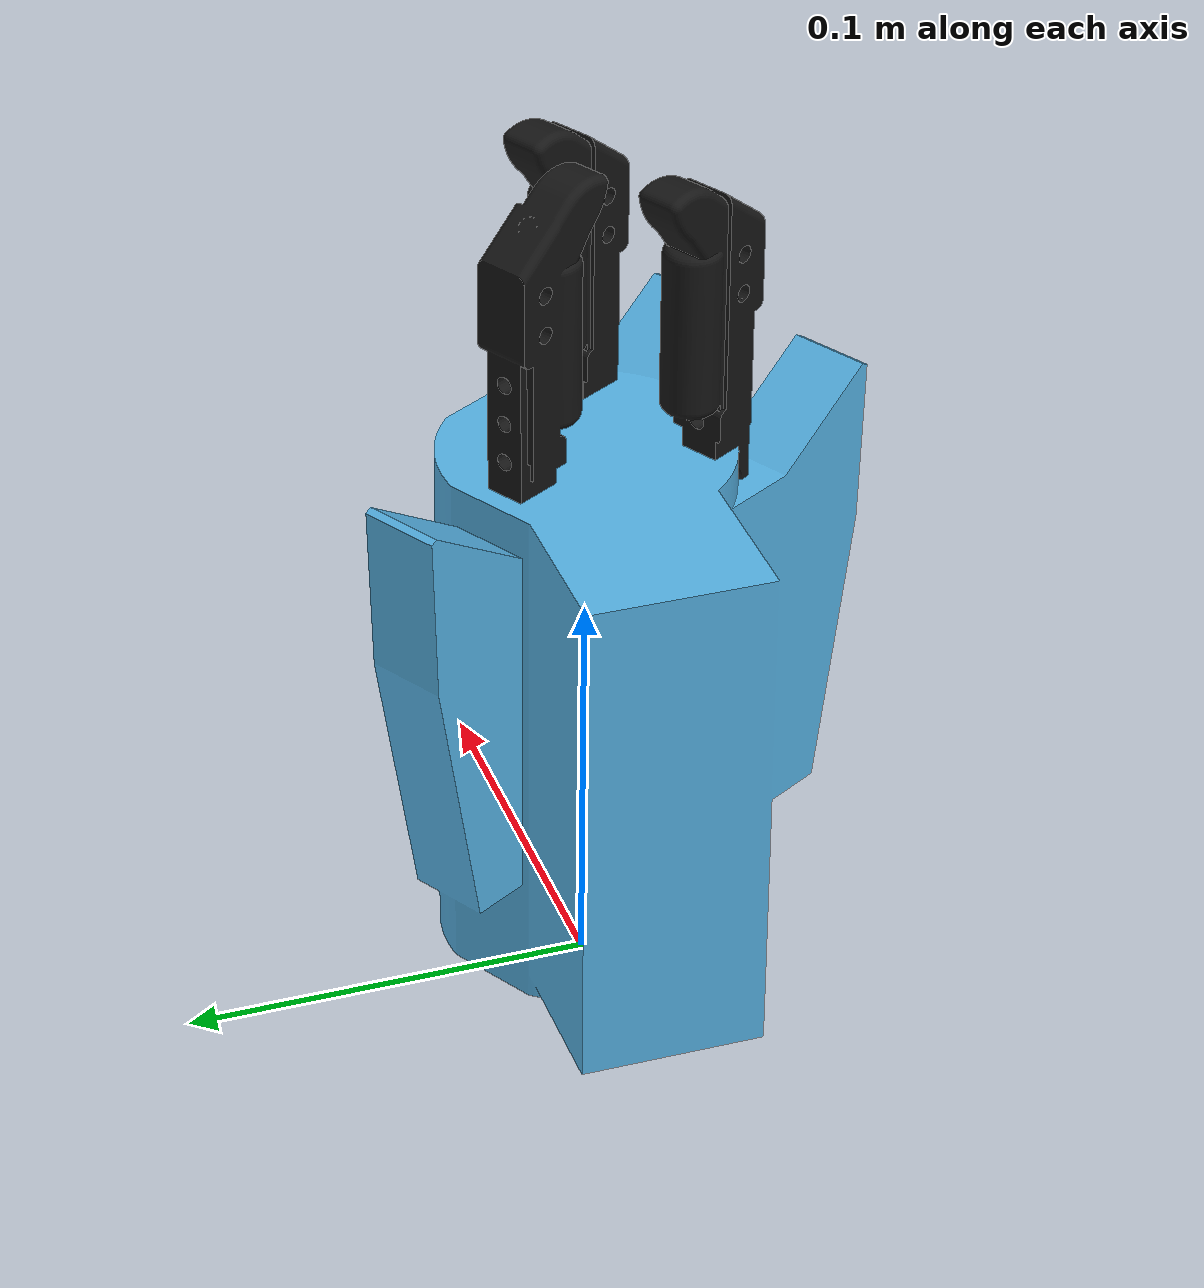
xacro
<?xml version="1.0"?>
<robot name="mhand2" xmlns:xacro="http://ros.org/wiki/xacro">

  <xacro:include filename="$(find mhand_description)/urdf/mhand_body/mhand2_body.urdf.xacro"/>
  <xacro:include filename="$(find mhand_description)/urdf/mhand_finger/mhand_finger.urdf.xacro"/>

  <!-- =============== Link & Joint =============== -->
  <!-- mhand_body -->
  <link name="hand_link"/>

  <xacro:mhand_body_v0 parent="hand_link">
    <origin xyz="0 0 0"/>
  </xacro:mhand_body_v0>

  <!-- mhand_finger -->
  <xacro:mhand_finger_v0 suffix="A" parent="mhand_body_link">
    <origin xyz="-0.011 0.019 0.135" rpy="3.14 -1.57 2.09"/>
    <axis xyz="0 1 0"/>
  </xacro:mhand_finger_v0>

  <xacro:mhand_finger_v0 suffix="B" parent="mhand_body_link">
    <origin xyz="-0.007 -0.029 0.135" rpy="3.14 -1.57 -1.05"/>
    <axis xyz="0 1 0"/>
  </xacro:mhand_finger_v0>

  <xacro:mhand_finger_v0 suffix="C" parent="mhand_body_link">
    <origin xyz="0.028 -0.009 0.135" rpy="3.14 -1.57 -1.05"/>
    <axis xyz="0 1 0"/>
  </xacro:mhand_finger_v0>

</robot>

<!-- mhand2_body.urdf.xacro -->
<robot xmlns:xacro="http://ros.org/wiki/xacro">

  <xacro:macro name="mhand_body_v0" params="parent *joint_origin">
    <joint name="mhand_link_joint" type="fixed">
      <xacro:insert_block name="joint_origin"/>
      <parent link="${parent}"/>
      <child link="mhand_body_link"/>
    </joint>

    <link name="mhand_body_link">
      <visual>
	<geometry>
	  <mesh filename="package://mhand_description/meshes/DAE/mhand2_body_origin.dae"/>
	</geometry>
      </visual>
      <collision>
	<geometry>
	  <mesh filename="package://mhand_description/meshes/STL/mhand2_body.stl"/>
	</geometry>
      </collision>
      <inertial>
	<origin xyz="0 0 0"/>
	<mass value="0.968"/>
	<inertia ixx="0.002" ixy="0.0" ixz="0.0"
		 iyy="0.003" iyz="0.0"
		 izz="0.001" />
      </inertial>
    </link>
  </xacro:macro>

</robot>

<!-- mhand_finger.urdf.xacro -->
<robot xmlns:xacro="http://ros.org/wiki/xacro">

  <xacro:include filename="$(find mhand_description)/urdf/mhand_finger/mhand_finger.transmission.xacro"/>

  <xacro:macro name="mhand_finger_v0" params="suffix parent *joint_origin *joint_axis">
	<joint name="finger_${suffix}_joint" type="revolute">
	  <xacro:insert_block name="joint_origin"/>
	  <parent link="${parent}"/>
	  <child link="mhand_finger_${suffix}"/>
	  <xacro:insert_block name="joint_axis"/>
	  <limit lower="-1.22" upper="0" effort="0.5293" velocity="6.159937255" />
	</joint>

	<link name="mhand_finger_${suffix}">
	  <visual>
	    <geometry>
	      <mesh filename="package://mhand_description/meshes/DAE/mhand_finger.dae"/>
	    </geometry>
	  </visual>
	  <collision>
	    <geometry>
	      <mesh filename="package://mhand_description/meshes/STL/mhand_finger.stl"/>
	    </geometry>
	  </collision>
	  <inertial>
	    <origin xyz="0 0 0"/>
	    <mass value="0.968"/>
	    <inertia ixx="0.002" ixy="0.0" ixz="0.0"
		     iyy="0.003" iyz="0.0"
		     izz="0.001" />
	  </inertial>
	</link>
	<xacro:finger_transmission suffix="${suffix}"/>
  </xacro:macro>

</robot>
